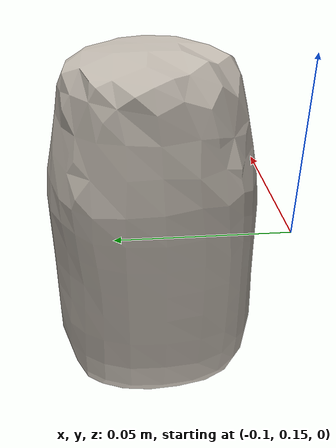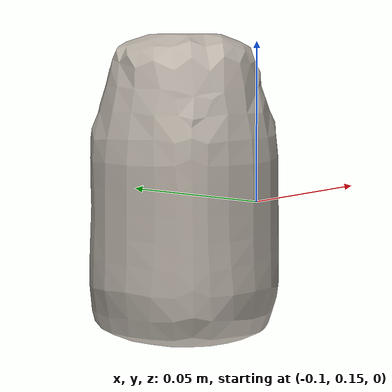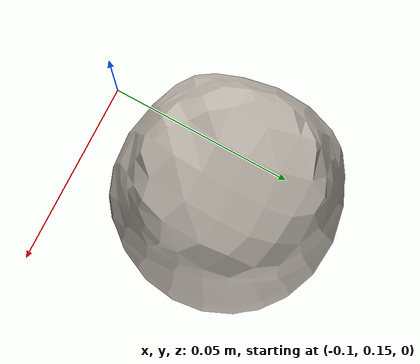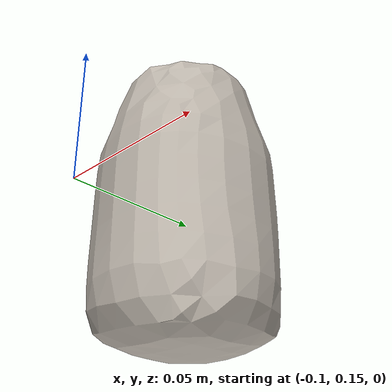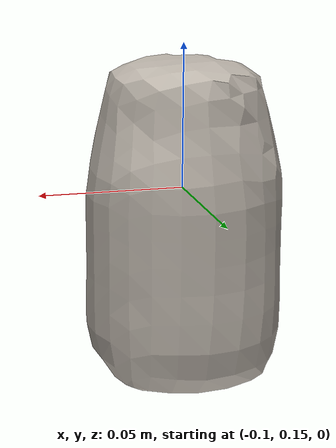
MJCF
<mujoco model="pillbottle_Beta_Glucan_M">
  <asset>
    <mesh file="meshes/pillbottle_Beta_Glucan_M.stl" name="pillbottle_mesh" scale="0.861714629914363 0.861714629914363 0.861714629914363"/>
    <texture type="cube" file="/home/jbw/Projects/gc-reorientation/bin_env/assets/textures/ceramic.png" rgb1="1 1 1" name="tex-pillbottle"/>
    <material name="pillbottle" reflectance="0.5" texrepeat="3 3" texture="tex-pillbottle"/>
  </asset>
  <worldbody>
    <body>
      <body name="object">
        <geom pos="-0.08937092469652759 0.1883743420275535 -0.0024801439374136256" quat="1 0 0 0" mesh="pillbottle_mesh" type="mesh" solref="0.02 1" density="0" friction="1.0 1.0 1.0" material="pillbottle" group="0" condim="4"/>
      </body>
      <site rgba="0 0 0 0" size="0.005" pos="0 0 -0.05" name="bottom_site"/>
      <site rgba="0 0 0 0" size="0.005" pos="0 0 0.03" name="top_site"/>
      <site rgba="0 0 0 0" size="0.005" pos="0.02 0.015 0" name="horizontal_radius_site"/>
    </body>
  </worldbody>
</mujoco>
